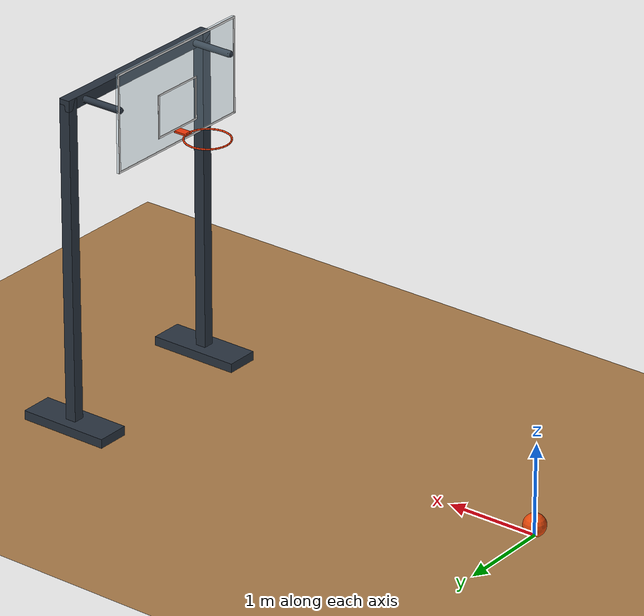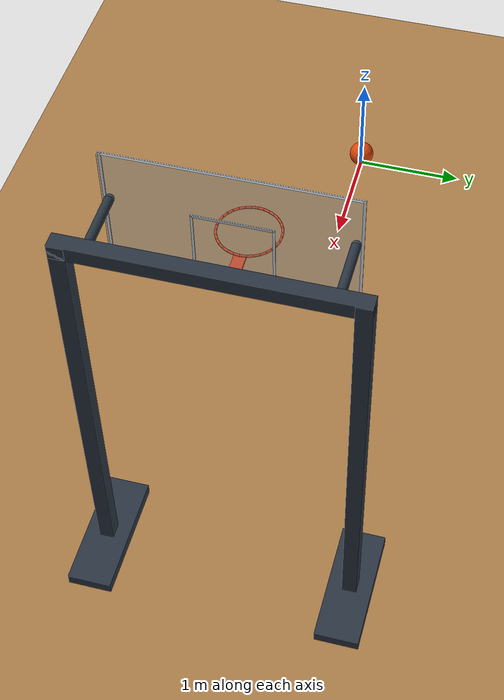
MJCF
<mujoco model="basketball_launch">
  <compiler angle="degree"/>
  <option timestep="0.002" gravity="0 0 -9.81" integrator="RK4"/>
  <visual>
    <headlight ambient="0.35 0.35 0.35" diffuse="0.65 0.65 0.65" specular="0.2 0.2 0.2"/>
    <rgba haze="0.85 0.9 0.95 1"/>
  </visual>

  <worldbody>
    <light name="court_light" pos="1 -3 8" dir="0.2 0.3 -1" directional="true" diffuse="0.8 0.8 0.8"/>
    <camera name="overview" pos="7 -10 6" xyaxes="0.894427 0.447214 0 -0.182574 0.365148 0.912871" fovy="45"/>

    <geom name="floor" type="plane" pos="0 0 0" size="8 6 0.1" rgba="0.66 0.48 0.28 1" friction="0.8 0.005 0.0001"/>

    <!-- Regulation-size basketball: diameter 0.24 m, mass 0.624 kg. -->
    <body name="ball" pos="0 0 0.12">
      <freejoint/>
      <geom name="ball" type="sphere" size="0.12" mass="0.624" rgba="0.9 0.28 0.035 1" friction="0.6 0.005 0.0001"/>
    </body>

    <!-- Rim center is 4 m horizontally from launch and 3.05 m above the floor. -->
    <body name="hoop" pos="4 0 3.05">
      <!-- An approximately 0.457 m clear opening, built from 18 mm diameter steel capsules. -->
      <geom name="rim_00" type="capsule" fromto="0.237600 0 0 0.233035 0.046352 0" size="0.009" rgba="0.95 0.22 0.035 1"/>
      <geom name="rim_01" type="capsule" fromto="0.233035 0.046352 0 0.219514 0.090926 0" size="0.009" rgba="0.95 0.22 0.035 1"/>
      <geom name="rim_02" type="capsule" fromto="0.219514 0.090926 0 0.197557 0.132003 0" size="0.009" rgba="0.95 0.22 0.035 1"/>
      <geom name="rim_03" type="capsule" fromto="0.197557 0.132003 0 0.168009 0.168009 0" size="0.009" rgba="0.95 0.22 0.035 1"/>
      <geom name="rim_04" type="capsule" fromto="0.168009 0.168009 0 0.132003 0.197557 0" size="0.009" rgba="0.95 0.22 0.035 1"/>
      <geom name="rim_05" type="capsule" fromto="0.132003 0.197557 0 0.090926 0.219514 0" size="0.009" rgba="0.95 0.22 0.035 1"/>
      <geom name="rim_06" type="capsule" fromto="0.090926 0.219514 0 0.046352 0.233035 0" size="0.009" rgba="0.95 0.22 0.035 1"/>
      <geom name="rim_07" type="capsule" fromto="0.046352 0.233035 0 0 0.237600 0" size="0.009" rgba="0.95 0.22 0.035 1"/>
      <geom name="rim_08" type="capsule" fromto="0 0.237600 0 -0.046352 0.233035 0" size="0.009" rgba="0.95 0.22 0.035 1"/>
      <geom name="rim_09" type="capsule" fromto="-0.046352 0.233035 0 -0.090926 0.219514 0" size="0.009" rgba="0.95 0.22 0.035 1"/>
      <geom name="rim_10" type="capsule" fromto="-0.090926 0.219514 0 -0.132003 0.197557 0" size="0.009" rgba="0.95 0.22 0.035 1"/>
      <geom name="rim_11" type="capsule" fromto="-0.132003 0.197557 0 -0.168009 0.168009 0" size="0.009" rgba="0.95 0.22 0.035 1"/>
      <geom name="rim_12" type="capsule" fromto="-0.168009 0.168009 0 -0.197557 0.132003 0" size="0.009" rgba="0.95 0.22 0.035 1"/>
      <geom name="rim_13" type="capsule" fromto="-0.197557 0.132003 0 -0.219514 0.090926 0" size="0.009" rgba="0.95 0.22 0.035 1"/>
      <geom name="rim_14" type="capsule" fromto="-0.219514 0.090926 0 -0.233035 0.046352 0" size="0.009" rgba="0.95 0.22 0.035 1"/>
      <geom name="rim_15" type="capsule" fromto="-0.233035 0.046352 0 -0.237600 0 0" size="0.009" rgba="0.95 0.22 0.035 1"/>
      <geom name="rim_16" type="capsule" fromto="-0.237600 0 0 -0.233035 -0.046352 0" size="0.009" rgba="0.95 0.22 0.035 1"/>
      <geom name="rim_17" type="capsule" fromto="-0.233035 -0.046352 0 -0.219514 -0.090926 0" size="0.009" rgba="0.95 0.22 0.035 1"/>
      <geom name="rim_18" type="capsule" fromto="-0.219514 -0.090926 0 -0.197557 -0.132003 0" size="0.009" rgba="0.95 0.22 0.035 1"/>
      <geom name="rim_19" type="capsule" fromto="-0.197557 -0.132003 0 -0.168009 -0.168009 0" size="0.009" rgba="0.95 0.22 0.035 1"/>
      <geom name="rim_20" type="capsule" fromto="-0.168009 -0.168009 0 -0.132003 -0.197557 0" size="0.009" rgba="0.95 0.22 0.035 1"/>
      <geom name="rim_21" type="capsule" fromto="-0.132003 -0.197557 0 -0.090926 -0.219514 0" size="0.009" rgba="0.95 0.22 0.035 1"/>
      <geom name="rim_22" type="capsule" fromto="-0.090926 -0.219514 0 -0.046352 -0.233035 0" size="0.009" rgba="0.95 0.22 0.035 1"/>
      <geom name="rim_23" type="capsule" fromto="-0.046352 -0.233035 0 0 -0.237600 0" size="0.009" rgba="0.95 0.22 0.035 1"/>
      <geom name="rim_24" type="capsule" fromto="0 -0.237600 0 0.046352 -0.233035 0" size="0.009" rgba="0.95 0.22 0.035 1"/>
      <geom name="rim_25" type="capsule" fromto="0.046352 -0.233035 0 0.090926 -0.219514 0" size="0.009" rgba="0.95 0.22 0.035 1"/>
      <geom name="rim_26" type="capsule" fromto="0.090926 -0.219514 0 0.132003 -0.197557 0" size="0.009" rgba="0.95 0.22 0.035 1"/>
      <geom name="rim_27" type="capsule" fromto="0.132003 -0.197557 0 0.168009 -0.168009 0" size="0.009" rgba="0.95 0.22 0.035 1"/>
      <geom name="rim_28" type="capsule" fromto="0.168009 -0.168009 0 0.197557 -0.132003 0" size="0.009" rgba="0.95 0.22 0.035 1"/>
      <geom name="rim_29" type="capsule" fromto="0.197557 -0.132003 0 0.219514 -0.090926 0" size="0.009" rgba="0.95 0.22 0.035 1"/>
      <geom name="rim_30" type="capsule" fromto="0.219514 -0.090926 0 0.233035 -0.046352 0" size="0.009" rgba="0.95 0.22 0.035 1"/>
      <geom name="rim_31" type="capsule" fromto="0.233035 -0.046352 0 0.237600 0 0" size="0.009" rgba="0.95 0.22 0.035 1"/>
      <geom name="rim_mount" type="box" pos="0.31 0 -0.0135" size="0.075 0.045 0.01" rgba="0.95 0.22 0.035 1"/>

      <body name="backboard" pos="0.3935 0 0.375">
        <geom name="backboard_pane" type="box" size="0.0125 0.9 0.525" rgba="0.72 0.85 0.92 0.35"/>
        <geom name="backboard_border_top" type="box" pos="-0.016 0 0.515" size="0.004 0.9 0.01" rgba="0.95 0.95 0.95 1"/>
        <geom name="backboard_border_bottom" type="box" pos="-0.016 0 -0.515" size="0.004 0.9 0.01" rgba="0.95 0.95 0.95 1"/>
        <geom name="backboard_border_left" type="box" pos="-0.016 -0.89 0" size="0.004 0.01 0.525" rgba="0.95 0.95 0.95 1"/>
        <geom name="backboard_border_right" type="box" pos="-0.016 0.89 0" size="0.004 0.01 0.525" rgba="0.95 0.95 0.95 1"/>
        <geom name="target_top" type="box" pos="-0.016 0 0.084" size="0.004 0.295 0.009" rgba="0.95 0.95 0.95 1"/>
        <geom name="target_bottom" type="box" pos="-0.016 0 -0.366" size="0.004 0.295 0.009" rgba="0.95 0.95 0.95 1"/>
        <geom name="target_left" type="box" pos="-0.016 -0.286 -0.141" size="0.004 0.009 0.225" rgba="0.95 0.95 0.95 1"/>
        <geom name="target_right" type="box" pos="-0.016 0.286 -0.141" size="0.004 0.009 0.225" rgba="0.95 0.95 0.95 1"/>
      </body>
    </body>

    <body name="goal_support" pos="4.9 0 0">
      <geom name="support_left_post" type="box" pos="0 -1.03 1.8" size="0.06 0.06 1.8" rgba="0.16 0.2 0.25 1"/>
      <geom name="support_right_post" type="box" pos="0 1.03 1.8" size="0.06 0.06 1.8" rgba="0.16 0.2 0.25 1"/>
      <geom name="support_crossbar" type="box" pos="0 0 3.55" size="0.06 1.09 0.06" rgba="0.16 0.2 0.25 1"/>
      <geom name="support_left_arm" type="capsule" fromto="0 -0.85 3.55 -0.5 -0.85 3.55" size="0.035" rgba="0.16 0.2 0.25 1"/>
      <geom name="support_right_arm" type="capsule" fromto="0 0.85 3.55 -0.5 0.85 3.55" size="0.035" rgba="0.16 0.2 0.25 1"/>
      <geom name="support_left_foot" type="box" pos="0 -1.03 0.05" size="0.5 0.18 0.05" rgba="0.16 0.2 0.25 1"/>
      <geom name="support_right_foot" type="box" pos="0 1.03 0.05" size="0.5 0.18 0.05" rgba="0.16 0.2 0.25 1"/>
    </body>
  </worldbody>

  <!-- Ideal ballistic trajectory reaches (4, 0, 3.05) at t = 1.25 s, descending at 3.78725 m/s. -->
  <keyframe>
    <key name="start" qpos="0 0 0.12 1 0 0 0" qvel="3.2 0 8.47525 0 0 0"/>
  </keyframe>
</mujoco>
